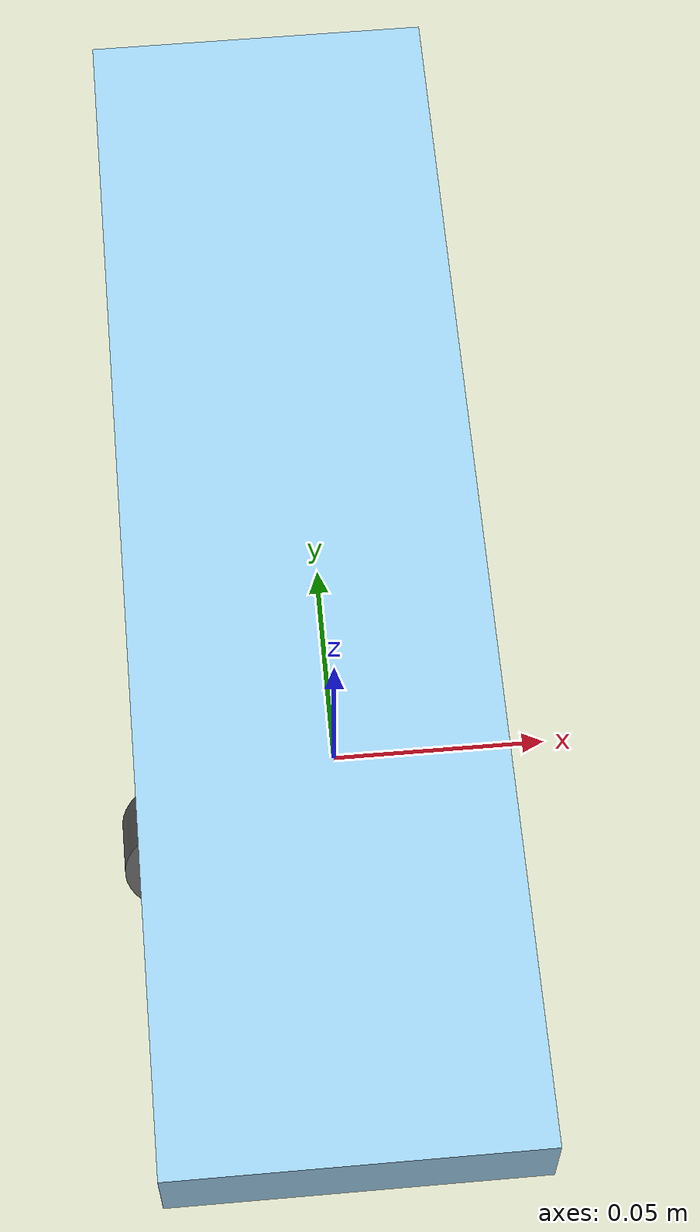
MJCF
<?xml version="1.0" ?>
<!-- Generated using onshape-to-robot -->
<!-- Onshape https://cad.onshape.com/documents/ba106cac193c0e2253e1958f/w/09cfe82abf86880a1925d040/e/f28780c2d6b32b9fc826e5e8 -->
<mujoco model="bam">
  <compiler angle="radian" meshdir="assets" autolimits="true"/>
  <default>
    <default class="bam">
      <joint frictionloss="0.1" armature="0.005"/>
      <position kp="50" dampratio="1"/>
      <default class="visual">
        <geom type="mesh" contype="0" conaffinity="0" group="2"/>
      </default>
      <default class="collision">
        <geom group="3"/>
      </default>
    </default>
  </default>
  <worldbody>
    <!-- Link fixed_top -->
    <body name="fixed_top" pos="0 0 0" quat="1 0 0 0" childclass="bam">
      <inertial pos="-0.00495945 0.0201257 0.0246646" mass="0.065" fullinertia="1.66445e-05 1.09474e-05 1.00843e-05 8.317e-09 2.1e-09 -5.8687e-07"/>
      <!-- Part fixed_top -->
      <geom type="mesh" class="visual" pos="-0.00498609 0.0475757 -0.00597995" quat="1 0 0 0" mesh="fixed_top" material="fixed_top_material"/>
      <geom type="mesh" class="collision" pos="-0.00498609 0.0475757 -0.00597995" quat="1 0 0 0" mesh="fixed_top" material="fixed_top_material"/>
      <!-- Part htd_45h_1circle -->
      <geom type="mesh" class="visual" pos="-0.0645759 0.0492759 0.0213477" quat="0.709455 0.704751 -0 0" mesh="htd_45h_1circle" material="htd_45h_1circle_material"/>
      <geom type="mesh" class="collision" pos="-0.0645759 0.0492759 0.0213477" quat="0.709455 0.704751 -0 0" mesh="htd_45h_1circle" material="htd_45h_1circle_material"/>
      <!-- Link innor_support -->
      <body name="innor_support" pos="-0.00488909 -0.00293508 0.0154971" quat="0.70422 -0.709981 -0.000290991 0.000293371">
        <!-- Joint from fixed_top to innor_support -->
        <joint axis="0 0 1" name="pitch" type="hinge"/>
        <inertial pos="0.000592486 0.116699 0.0261586" mass="0.612761" fullinertia="0.000633586 0.000447261 0.000990053 -1.34752e-06 -1.05662e-07 -3.7123e-06"/>
        <!-- Part part_5 -->
        <geom type="mesh" class="visual" pos="0.000353161 0.000410536 0.0263088" quat="0.706842 0.707372 -3.29423e-05 3.29426e-05" mesh="part_5" material="part_5_material"/>
        <geom type="mesh" class="collision" pos="0.000353161 0.000410536 0.0263088" quat="0.706842 0.707372 -3.29423e-05 3.29426e-05" mesh="part_5" material="part_5_material"/>
        <!-- Part innor_support -->
        <geom type="mesh" class="visual" pos="0.000657483 0.000410562 0.0263086" quat="0.706841 0.707373 -3.36599e-05 3.36603e-05" mesh="innor_support" material="innor_support_material"/>
        <geom type="mesh" class="collision" pos="0.000657483 0.000410562 0.0263086" quat="0.706841 0.707373 -3.36599e-05 3.36603e-05" mesh="innor_support" material="innor_support_material"/>
        <!-- Part weight -->
        <geom type="mesh" class="visual" pos="0.000657483 0.000410562 0.0263086" quat="0.706841 0.707373 -3.36599e-05 3.36603e-05" mesh="weight" material="weight_material"/>
        <geom type="mesh" class="collision" pos="0.000657483 0.000410562 0.0263086" quat="0.706841 0.707373 -3.36599e-05 3.36603e-05" mesh="weight" material="weight_material"/>
        <!-- Part support_arm -->
        <geom type="mesh" class="visual" pos="0 -0 0.0264" quat="0.707107 0.707107 0 0" mesh="support_arm" material="support_arm_material"/>
        <geom type="mesh" class="collision" pos="0 -0 0.0264" quat="0.707107 0.707107 0 0" mesh="support_arm" material="support_arm_material"/>
        <!-- Part part_4 -->
        <geom type="mesh" class="visual" pos="0.00035322 0.000410589 0.0263088" quat="0.706842 0.707372 -3.29423e-05 3.29426e-05" mesh="part_4" material="part_4_material"/>
        <geom type="mesh" class="collision" pos="0.00035322 0.000410589 0.0263088" quat="0.706842 0.707372 -3.29423e-05 3.29426e-05" mesh="part_4" material="part_4_material"/>
        <!-- Part power_arm -->
        <geom type="mesh" class="visual" pos="0 -0 0.0268" quat="0.707107 0.707107 -0 0" mesh="power_arm" material="power_arm_material"/>
        <geom type="mesh" class="collision" pos="0 -0 0.0268" quat="0.707107 0.707107 -0 0" mesh="power_arm" material="power_arm_material"/>
        <!-- Part part_3 -->
        <geom type="mesh" class="visual" pos="0 -0 0.0266" quat="0.707107 0.707107 0 0" mesh="part_3" material="part_3_material"/>
        <geom type="mesh" class="collision" pos="0 -0 0.0266" quat="0.707107 0.707107 0 0" mesh="part_3" material="part_3_material"/>
      </body>
    </body>
  </worldbody>
  <asset>
    <mesh file="weight.stl"/>
    <mesh file="htd_45h_1circle.stl"/>
    <mesh file="part_3.stl"/>
    <mesh file="power_arm.stl"/>
    <mesh file="innor_support.stl"/>
    <mesh file="part_4.stl"/>
    <mesh file="fixed_top.stl"/>
    <mesh file="part_5.stl"/>
    <mesh file="support_arm.stl"/>
    <material name="fixed_top_material" rgba="0.615686 0.811765 0.929412 1"/>
    <material name="htd_45h_1circle_material" rgba="0.615686 0.811765 0.929412 1"/>
    <material name="part_5_material" rgba="0.768627 0.886275 0.952941 1"/>
    <material name="innor_support_material" rgba="0.972549 0.529412 0.00392157 1"/>
    <material name="weight_material" rgba="0.498039 0.498039 0.498039 1"/>
    <material name="support_arm_material" rgba="0.647059 0.647059 0.647059 1"/>
    <material name="part_4_material" rgba="0.917647 0.917647 0.917647 1"/>
    <material name="power_arm_material" rgba="0.615686 0.811765 0.929412 1"/>
    <material name="part_3_material" rgba="0.231373 0.380392 0.705882 1"/>
  </asset>
  <actuator>
    <position class="bam" name="pitch" joint="pitch"/>
  </actuator>
  <equality/>
</mujoco>
